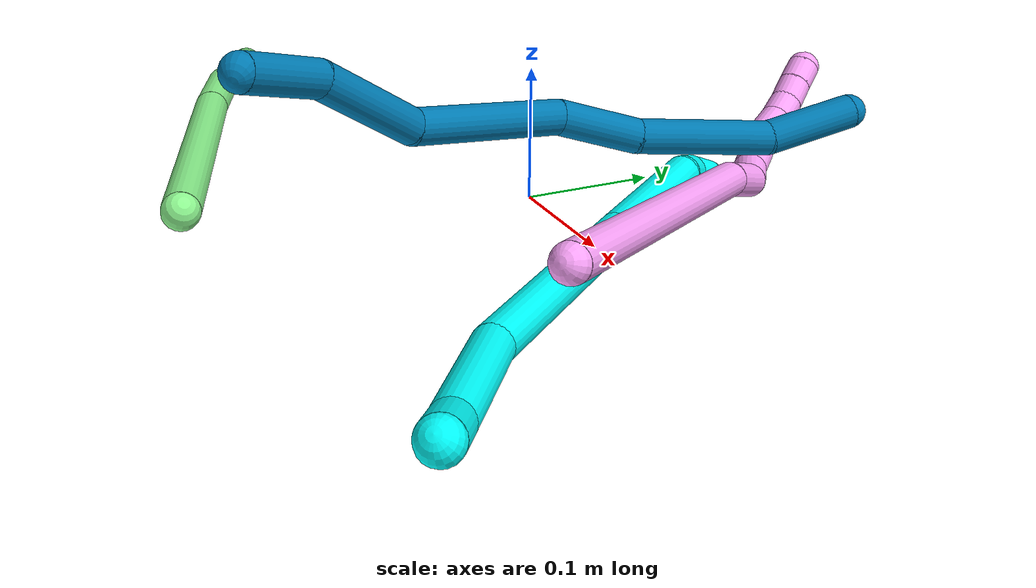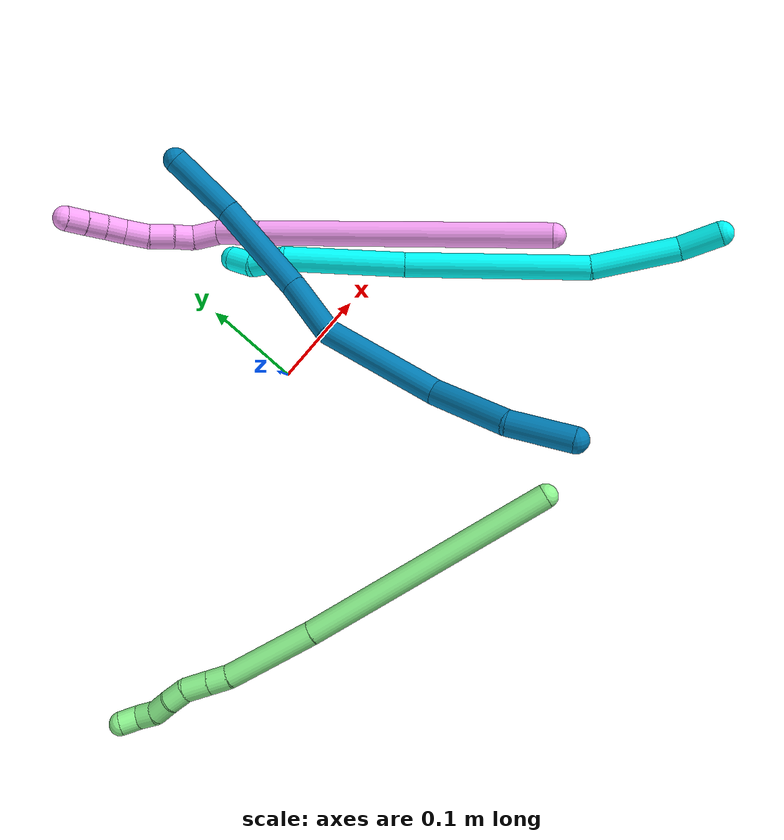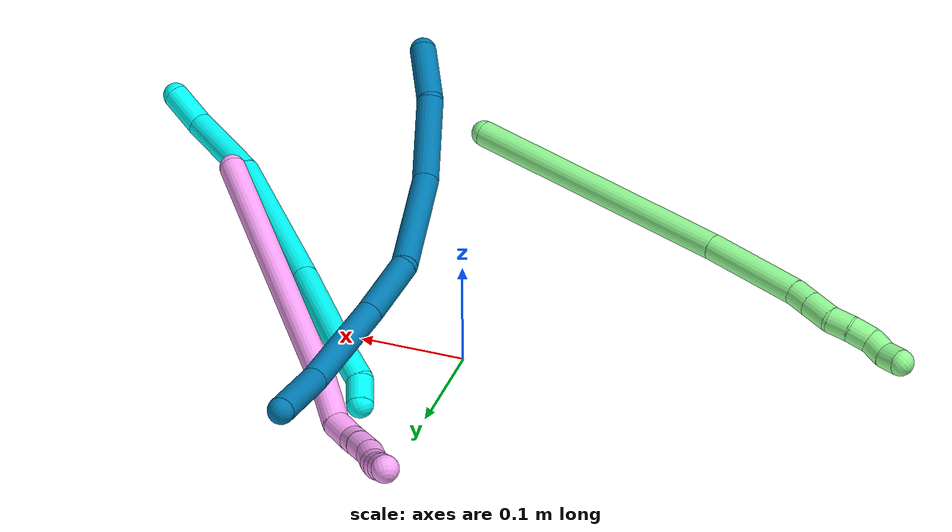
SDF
<sdf version="1.7">
 <world name="default">
  <model name="3">
   <static>0</static>
   <link name="3">
    <collision name="collision-cylinder-e_1_1_4">
     <pose>-0.002329 0.008233 -0.01924 -2.73727 -0.110824 0.528593</pose>
     <geometry><cylinder><radius>0.0125</radius><length>0.042114</length></cylinder></geometry>
     <surface>
      <friction><ode><mu>1.16</mu><mu2>1.16</mu2><slip1>0</slip1><slip2>0</slip2></ode></friction>
      <contact><ode><kp>1e+06</kp><kd>1</kd><max_vel>0</max_vel><min_depth>0.001</min_depth></ode></contact>
     </surface>
    </collision>
    <visual name="visual-cylinder-e_1_1_4">
     <pose>-0.002329 0.008233 -0.01924 -2.73727 -0.110824 0.528593</pose>
     <geometry><cylinder><radius>0.0125</radius><length>0.042114</length></cylinder></geometry>
     <material><ambient>0.003922 1 0.996078 1</ambient></material>
    </visual>
    <collision name="collision-cylinder-e_2_4_5">
     <pose>-0.003233 0.044675 -0.073181 -2.45901 0.031835 -0.089576</pose>
     <geometry><cylinder><radius>0.0125</radius><length>0.089485</length></cylinder></geometry>
     <surface>
      <friction><ode><mu>1.16</mu><mu2>1.16</mu2><slip1>0</slip1><slip2>0</slip2></ode></friction>
      <contact><ode><kp>1e+06</kp><kd>1</kd><max_vel>0</max_vel><min_depth>0.001</min_depth></ode></contact>
     </surface>
    </collision>
    <visual name="visual-cylinder-e_2_4_5">
     <pose>-0.003233 0.044675 -0.073181 -2.45901 0.031835 -0.089576</pose>
     <geometry><cylinder><radius>0.0125</radius><length>0.089485</length></cylinder></geometry>
     <material><ambient>0.003922 1 0.996078 1</ambient></material>
    </visual>
    <collision name="collision-cylinder-e_3_5_6">
     <pose>0.021818 0.129888 -0.177047 -2.4523 0.257748 -0.692896</pose>
     <geometry><cylinder><radius>0.0125</radius><length>0.185381</length></cylinder></geometry>
     <surface>
      <friction><ode><mu>1.16</mu><mu2>1.16</mu2><slip1>0</slip1><slip2>0</slip2></ode></friction>
      <contact><ode><kp>1e+06</kp><kd>1</kd><max_vel>0</max_vel><min_depth>0.001</min_depth></ode></contact>
     </surface>
    </collision>
    <visual name="visual-cylinder-e_3_5_6">
     <pose>0.021818 0.129888 -0.177047 -2.4523 0.257748 -0.692896</pose>
     <geometry><cylinder><radius>0.0125</radius><length>0.185381</length></cylinder></geometry>
     <material><ambient>0.003922 1 0.996078 1</ambient></material>
    </visual>
    <collision name="collision-cylinder-e_4_6_7">
     <pose>0.062812 0.22493 -0.29041 -2.43093 0.289455 -0.748498</pose>
     <geometry><cylinder><radius>0.0125</radius><length>0.121686</length></cylinder></geometry>
     <surface>
      <friction><ode><mu>1.16</mu><mu2>1.16</mu2><slip1>0</slip1><slip2>0</slip2></ode></friction>
      <contact><ode><kp>1e+06</kp><kd>1</kd><max_vel>0</max_vel><min_depth>0.001</min_depth></ode></contact>
     </surface>
    </collision>
    <visual name="visual-cylinder-e_4_6_7">
     <pose>0.062812 0.22493 -0.29041 -2.43093 0.289455 -0.748498</pose>
     <geometry><cylinder><radius>0.0125</radius><length>0.121686</length></cylinder></geometry>
     <material><ambient>0.003922 1 0.996078 1</ambient></material>
    </visual>
    <collision name="collision-cylinder-e_5_7_8">
     <pose>0.081482 0.270249 -0.350954 -2.72263 0.072731 -0.338972</pose>
     <geometry><cylinder><radius>0.0125</radius><length>0.035887</length></cylinder></geometry>
     <surface>
      <friction><ode><mu>1.16</mu><mu2>1.16</mu2><slip1>0</slip1><slip2>0</slip2></ode></friction>
      <contact><ode><kp>1e+06</kp><kd>1</kd><max_vel>0</max_vel><min_depth>0.001</min_depth></ode></contact>
     </surface>
    </collision>
    <visual name="visual-cylinder-e_5_7_8">
     <pose>0.081482 0.270249 -0.350954 -2.72263 0.072731 -0.338972</pose>
     <geometry><cylinder><radius>0.0125</radius><length>0.035887</length></cylinder></geometry>
     <material><ambient>0.003922 1 0.996078 1</ambient></material>
    </visual>
    <collision name="collision-cylinder-e_6_8_2">
     <pose>0.088638 0.279946 -0.378339 -2.92603 0.477913 -2.30563</pose>
     <geometry><cylinder><radius>0.0125</radius><length>0.025447</length></cylinder></geometry>
     <surface>
      <friction><ode><mu>1.16</mu><mu2>1.16</mu2><slip1>0</slip1><slip2>0</slip2></ode></friction>
      <contact><ode><kp>1e+06</kp><kd>1</kd><max_vel>0</max_vel><min_depth>0.001</min_depth></ode></contact>
     </surface>
    </collision>
    <visual name="visual-cylinder-e_6_8_2">
     <pose>0.088638 0.279946 -0.378339 -2.92603 0.477913 -2.30563</pose>
     <geometry><cylinder><radius>0.0125</radius><length>0.025447</length></cylinder></geometry>
     <material><ambient>0.003922 1 0.996078 1</ambient></material>
    </visual>
    <collision name="collision-sphere-2">
     <pose>0.094489 0.282363 -0.389375 0 -0 0</pose>
     <geometry><sphere><radius>0.0125</radius></sphere></geometry>
     <surface>
      <friction><ode><mu>1.16</mu><mu2>1.16</mu2><slip1>0</slip1><slip2>0</slip2></ode></friction>
      <contact><ode><kp>1e+06</kp><kd>1</kd><max_vel>0</max_vel><min_depth>0.001</min_depth></ode></contact>
     </surface>
    </collision>
    <visual name="visual-sphere-2">
     <pose>0.094489 0.282363 -0.389375 0 -0 0</pose>
     <geometry><sphere><radius>0.0125</radius></sphere></geometry>
     <material><ambient>0.003922 1 0.996078 1</ambient></material>
    </visual>
    <collision name="collision-sphere-4">
     <pose>-0.004658 0.016466 -0.03848 0 -0 0</pose>
     <geometry><sphere><radius>0.0125</radius></sphere></geometry>
     <surface>
      <friction><ode><mu>1.16</mu><mu2>1.16</mu2><slip1>0</slip1><slip2>0</slip2></ode></friction>
      <contact><ode><kp>1e+06</kp><kd>1</kd><max_vel>0</max_vel><min_depth>0.001</min_depth></ode></contact>
     </surface>
    </collision>
    <visual name="visual-sphere-4">
     <pose>-0.004658 0.016466 -0.03848 0 -0 0</pose>
     <geometry><sphere><radius>0.0125</radius></sphere></geometry>
     <material><ambient>0.003922 1 0.996078 1</ambient></material>
    </visual>
    <collision name="collision-sphere-1">
     <geometry><sphere><radius>0.0125</radius></sphere></geometry>
     <surface>
      <friction><ode><mu>1.16</mu><mu2>1.16</mu2><slip1>0</slip1><slip2>0</slip2></ode></friction>
      <contact><ode><kp>1e+06</kp><kd>1</kd><max_vel>0</max_vel><min_depth>0.001</min_depth></ode></contact>
     </surface>
    </collision>
    <visual name="visual-sphere-1">
     <geometry><sphere><radius>0.0125</radius></sphere></geometry>
     <material><ambient>0.003922 1 0.996078 1</ambient></material>
    </visual>
    <collision name="collision-sphere-8">
     <pose>0.082786 0.27753 -0.367302 0 -0 0</pose>
     <geometry><sphere><radius>0.0125</radius></sphere></geometry>
     <surface>
      <friction><ode><mu>1.16</mu><mu2>1.16</mu2><slip1>0</slip1><slip2>0</slip2></ode></friction>
      <contact><ode><kp>1e+06</kp><kd>1</kd><max_vel>0</max_vel><min_depth>0.001</min_depth></ode></contact>
     </surface>
    </collision>
    <visual name="visual-sphere-8">
     <pose>0.082786 0.27753 -0.367302 0 -0 0</pose>
     <geometry><sphere><radius>0.0125</radius></sphere></geometry>
     <material><ambient>0.003922 1 0.996078 1</ambient></material>
    </visual>
    <collision name="collision-sphere-5">
     <pose>-0.001809 0.072885 -0.107881 0 -0 0</pose>
     <geometry><sphere><radius>0.0125</radius></sphere></geometry>
     <surface>
      <friction><ode><mu>1.16</mu><mu2>1.16</mu2><slip1>0</slip1><slip2>0</slip2></ode></friction>
      <contact><ode><kp>1e+06</kp><kd>1</kd><max_vel>0</max_vel><min_depth>0.001</min_depth></ode></contact>
     </surface>
    </collision>
    <visual name="visual-sphere-5">
     <pose>-0.001809 0.072885 -0.107881 0 -0 0</pose>
     <geometry><sphere><radius>0.0125</radius></sphere></geometry>
     <material><ambient>0.003922 1 0.996078 1</ambient></material>
    </visual>
    <collision name="collision-sphere-6">
     <pose>0.045445 0.186891 -0.246213 0 -0 0</pose>
     <geometry><sphere><radius>0.0125</radius></sphere></geometry>
     <surface>
      <friction><ode><mu>1.16</mu><mu2>1.16</mu2><slip1>0</slip1><slip2>0</slip2></ode></friction>
      <contact><ode><kp>1e+06</kp><kd>1</kd><max_vel>0</max_vel><min_depth>0.001</min_depth></ode></contact>
     </surface>
    </collision>
    <visual name="visual-sphere-6">
     <pose>0.045445 0.186891 -0.246213 0 -0 0</pose>
     <geometry><sphere><radius>0.0125</radius></sphere></geometry>
     <material><ambient>0.003922 1 0.996078 1</ambient></material>
    </visual>
    <collision name="collision-sphere-7">
     <pose>0.080178 0.262969 -0.334606 0 -0 0</pose>
     <geometry><sphere><radius>0.0125</radius></sphere></geometry>
     <surface>
      <friction><ode><mu>1.16</mu><mu2>1.16</mu2><slip1>0</slip1><slip2>0</slip2></ode></friction>
      <contact><ode><kp>1e+06</kp><kd>1</kd><max_vel>0</max_vel><min_depth>0.001</min_depth></ode></contact>
     </surface>
    </collision>
    <visual name="visual-sphere-7">
     <pose>0.080178 0.262969 -0.334606 0 -0 0</pose>
     <geometry><sphere><radius>0.0125</radius></sphere></geometry>
     <material><ambient>0.003922 1 0.996078 1</ambient></material>
    </visual>
    <inertial>
     <pose>0.03296 0.145232 -0.195482 0 -0 0</pose>
     <mass>0.5</mass>
     <inertia>
      <ixx>0.000151</ixx>
      <ixy>0</ixy>
      <ixz>0</ixz>
      <iyy>-0.000804</iyy>
      <iyz>0</iyz>
      <izz>-0.000688</izz>
     </inertia>
    </inertial>
   </link>
   <pose>0.385968 -0.237553 0.070669 0.810497 -0.098687 0.955283</pose>
  </model>
  <model name="4">
   <static>0</static>
   <link name="4">
    <collision name="collision-cylinder-e_1_1_4">
     <pose>-0.033258 0.004374 -0.143745 -3.11117 -0.227268 2.87656</pose>
     <geometry><cylinder><radius>0.0125</radius><length>0.295214</length></cylinder></geometry>
     <surface>
      <friction><ode><mu>1.16</mu><mu2>1.16</mu2><slip1>0</slip1><slip2>0</slip2></ode></friction>
      <contact><ode><kp>1e+06</kp><kd>1</kd><max_vel>0</max_vel><min_depth>0.001</min_depth></ode></contact>
     </surface>
    </collision>
    <visual name="visual-cylinder-e_1_1_4">
     <pose>-0.033258 0.004374 -0.143745 -3.11117 -0.227268 2.87656</pose>
     <geometry><cylinder><radius>0.0125</radius><length>0.295214</length></cylinder></geometry>
     <material><ambient>1 0.65098 0.996078 1</ambient></material>
    </visual>
    <collision name="collision-cylinder-e_2_4_5">
     <pose>-0.068365 0.007837 -0.311405 3.10347 -0.077063 -2.22316</pose>
     <geometry><cylinder><radius>0.0125</radius><length>0.048007</length></cylinder></geometry>
     <surface>
      <friction><ode><mu>1.16</mu><mu2>1.16</mu2><slip1>0</slip1><slip2>0</slip2></ode></friction>
      <contact><ode><kp>1e+06</kp><kd>1</kd><max_vel>0</max_vel><min_depth>0.001</min_depth></ode></contact>
     </surface>
    </collision>
    <visual name="visual-cylinder-e_2_4_5">
     <pose>-0.068365 0.007837 -0.311405 3.10347 -0.077063 -2.22316</pose>
     <geometry><cylinder><radius>0.0125</radius><length>0.048007</length></cylinder></geometry>
     <material><ambient>1 0.65098 0.996078 1</ambient></material>
    </visual>
    <collision name="collision-cylinder-e_3_5_6">
     <pose>-0.076921 0.005743 -0.347333 3.04356 -0.507234 -2.76749</pose>
     <geometry><cylinder><radius>0.0125</radius><length>0.027619</length></cylinder></geometry>
     <surface>
      <friction><ode><mu>1.16</mu><mu2>1.16</mu2><slip1>0</slip1><slip2>0</slip2></ode></friction>
      <contact><ode><kp>1e+06</kp><kd>1</kd><max_vel>0</max_vel><min_depth>0.001</min_depth></ode></contact>
     </surface>
    </collision>
    <visual name="visual-cylinder-e_3_5_6">
     <pose>-0.076921 0.005743 -0.347333 3.04356 -0.507234 -2.76749</pose>
     <geometry><cylinder><radius>0.0125</radius><length>0.027619</length></cylinder></geometry>
     <material><ambient>1 0.65098 0.996078 1</ambient></material>
    </visual>
    <collision name="collision-cylinder-e_4_6_7">
     <pose>-0.08979 0.007783 -0.366817 -2.73456 -0.648104 2.03971</pose>
     <geometry><cylinder><radius>0.0125</radius><length>0.020411</length></cylinder></geometry>
     <surface>
      <friction><ode><mu>1.16</mu><mu2>1.16</mu2><slip1>0</slip1><slip2>0</slip2></ode></friction>
      <contact><ode><kp>1e+06</kp><kd>1</kd><max_vel>0</max_vel><min_depth>0.001</min_depth></ode></contact>
     </surface>
    </collision>
    <visual name="visual-cylinder-e_4_6_7">
     <pose>-0.08979 0.007783 -0.366817 -2.73456 -0.648104 2.03971</pose>
     <geometry><cylinder><radius>0.0125</radius><length>0.020411</length></cylinder></geometry>
     <material><ambient>1 0.65098 0.996078 1</ambient></material>
    </visual>
    <collision name="collision-cylinder-e_5_7_8">
     <pose>-0.103178 0.013756 -0.383955 -2.86424 -0.623453 2.3241</pose>
     <geometry><cylinder><radius>0.0125</radius><length>0.024759</length></cylinder></geometry>
     <surface>
      <friction><ode><mu>1.16</mu><mu2>1.16</mu2><slip1>0</slip1><slip2>0</slip2></ode></friction>
      <contact><ode><kp>1e+06</kp><kd>1</kd><max_vel>0</max_vel><min_depth>0.001</min_depth></ode></contact>
     </surface>
    </collision>
    <visual name="visual-cylinder-e_5_7_8">
     <pose>-0.103178 0.013756 -0.383955 -2.86424 -0.623453 2.3241</pose>
     <geometry><cylinder><radius>0.0125</radius><length>0.024759</length></cylinder></geometry>
     <material><ambient>1 0.65098 0.996078 1</ambient></material>
    </visual>
    <collision name="collision-cylinder-e_6_8_9">
     <pose>-0.115894 0.021074 -0.40326 -2.69915 -0.475253 1.64484</pose>
     <geometry><cylinder><radius>0.0125</radius><length>0.023989</length></cylinder></geometry>
     <surface>
      <friction><ode><mu>1.16</mu><mu2>1.16</mu2><slip1>0</slip1><slip2>0</slip2></ode></friction>
      <contact><ode><kp>1e+06</kp><kd>1</kd><max_vel>0</max_vel><min_depth>0.001</min_depth></ode></contact>
     </surface>
    </collision>
    <visual name="visual-cylinder-e_6_8_9">
     <pose>-0.115894 0.021074 -0.40326 -2.69915 -0.475253 1.64484</pose>
     <geometry><cylinder><radius>0.0125</radius><length>0.023989</length></cylinder></geometry>
     <material><ambient>1 0.65098 0.996078 1</ambient></material>
    </visual>
    <collision name="collision-cylinder-e_7_9_10">
     <pose>-0.127054 0.030486 -0.419558 -2.51264 -0.602987 1.52587</pose>
     <geometry><cylinder><radius>0.0125</radius><length>0.02</length></cylinder></geometry>
     <surface>
      <friction><ode><mu>1.16</mu><mu2>1.16</mu2><slip1>0</slip1><slip2>0</slip2></ode></friction>
      <contact><ode><kp>1e+06</kp><kd>1</kd><max_vel>0</max_vel><min_depth>0.001</min_depth></ode></contact>
     </surface>
    </collision>
    <visual name="visual-cylinder-e_7_9_10">
     <pose>-0.127054 0.030486 -0.419558 -2.51264 -0.602987 1.52587</pose>
     <geometry><cylinder><radius>0.0125</radius><length>0.02</length></cylinder></geometry>
     <material><ambient>1 0.65098 0.996078 1</ambient></material>
    </visual>
    <collision name="collision-cylinder-e_8_10_11">
     <pose>-0.139139 0.040319 -0.432048 -2.43377 -0.69636 1.55304</pose>
     <geometry><cylinder><radius>0.0125</radius><length>0.02</length></cylinder></geometry>
     <surface>
      <friction><ode><mu>1.16</mu><mu2>1.16</mu2><slip1>0</slip1><slip2>0</slip2></ode></friction>
      <contact><ode><kp>1e+06</kp><kd>1</kd><max_vel>0</max_vel><min_depth>0.001</min_depth></ode></contact>
     </surface>
    </collision>
    <visual name="visual-cylinder-e_8_10_11">
     <pose>-0.139139 0.040319 -0.432048 -2.43377 -0.69636 1.55304</pose>
     <geometry><cylinder><radius>0.0125</radius><length>0.02</length></cylinder></geometry>
     <material><ambient>1 0.65098 0.996078 1</ambient></material>
    </visual>
    <collision name="collision-cylinder-e_9_11_2">
     <pose>-0.151739 0.050331 -0.443918 -2.44792 -0.66689 1.52822</pose>
     <geometry><cylinder><radius>0.0125</radius><length>0.02</length></cylinder></geometry>
     <surface>
      <friction><ode><mu>1.16</mu><mu2>1.16</mu2><slip1>0</slip1><slip2>0</slip2></ode></friction>
      <contact><ode><kp>1e+06</kp><kd>1</kd><max_vel>0</max_vel><min_depth>0.001</min_depth></ode></contact>
     </surface>
    </collision>
    <visual name="visual-cylinder-e_9_11_2">
     <pose>-0.151739 0.050331 -0.443918 -2.44792 -0.66689 1.52822</pose>
     <geometry><cylinder><radius>0.0125</radius><length>0.02</length></cylinder></geometry>
     <material><ambient>1 0.65098 0.996078 1</ambient></material>
    </visual>
    <collision name="collision-sphere-2">
     <pose>-0.157924 0.055355 -0.44996 0 -0 0</pose>
     <geometry><sphere><radius>0.0125</radius></sphere></geometry>
     <surface>
      <friction><ode><mu>1.16</mu><mu2>1.16</mu2><slip1>0</slip1><slip2>0</slip2></ode></friction>
      <contact><ode><kp>1e+06</kp><kd>1</kd><max_vel>0</max_vel><min_depth>0.001</min_depth></ode></contact>
     </surface>
    </collision>
    <visual name="visual-sphere-2">
     <pose>-0.157924 0.055355 -0.44996 0 -0 0</pose>
     <geometry><sphere><radius>0.0125</radius></sphere></geometry>
     <material><ambient>1 0.65098 0.996078 1</ambient></material>
    </visual>
    <collision name="collision-sphere-11">
     <pose>-0.145553 0.045307 -0.437877 0 -0 0</pose>
     <geometry><sphere><radius>0.0125</radius></sphere></geometry>
     <surface>
      <friction><ode><mu>1.16</mu><mu2>1.16</mu2><slip1>0</slip1><slip2>0</slip2></ode></friction>
      <contact><ode><kp>1e+06</kp><kd>1</kd><max_vel>0</max_vel><min_depth>0.001</min_depth></ode></contact>
     </surface>
    </collision>
    <visual name="visual-sphere-11">
     <pose>-0.145553 0.045307 -0.437877 0 -0 0</pose>
     <geometry><sphere><radius>0.0125</radius></sphere></geometry>
     <material><ambient>1 0.65098 0.996078 1</ambient></material>
    </visual>
    <collision name="collision-sphere-10">
     <pose>-0.132725 0.035331 -0.426219 0 -0 0</pose>
     <geometry><sphere><radius>0.0125</radius></sphere></geometry>
     <surface>
      <friction><ode><mu>1.16</mu><mu2>1.16</mu2><slip1>0</slip1><slip2>0</slip2></ode></friction>
      <contact><ode><kp>1e+06</kp><kd>1</kd><max_vel>0</max_vel><min_depth>0.001</min_depth></ode></contact>
     </surface>
    </collision>
    <visual name="visual-sphere-10">
     <pose>-0.132725 0.035331 -0.426219 0 -0 0</pose>
     <geometry><sphere><radius>0.0125</radius></sphere></geometry>
     <material><ambient>1 0.65098 0.996078 1</ambient></material>
    </visual>
    <collision name="collision-sphere-9">
     <pose>-0.121382 0.02564 -0.412898 0 -0 0</pose>
     <geometry><sphere><radius>0.0125</radius></sphere></geometry>
     <surface>
      <friction><ode><mu>1.16</mu><mu2>1.16</mu2><slip1>0</slip1><slip2>0</slip2></ode></friction>
      <contact><ode><kp>1e+06</kp><kd>1</kd><max_vel>0</max_vel><min_depth>0.001</min_depth></ode></contact>
     </surface>
    </collision>
    <visual name="visual-sphere-9">
     <pose>-0.121382 0.02564 -0.412898 0 -0 0</pose>
     <geometry><sphere><radius>0.0125</radius></sphere></geometry>
     <material><ambient>1 0.65098 0.996078 1</ambient></material>
    </visual>
    <collision name="collision-sphere-4">
     <pose>-0.066517 0.008749 -0.28749 0 -0 0</pose>
     <geometry><sphere><radius>0.0125</radius></sphere></geometry>
     <surface>
      <friction><ode><mu>1.16</mu><mu2>1.16</mu2><slip1>0</slip1><slip2>0</slip2></ode></friction>
      <contact><ode><kp>1e+06</kp><kd>1</kd><max_vel>0</max_vel><min_depth>0.001</min_depth></ode></contact>
     </surface>
    </collision>
    <visual name="visual-sphere-4">
     <pose>-0.066517 0.008749 -0.28749 0 -0 0</pose>
     <geometry><sphere><radius>0.0125</radius></sphere></geometry>
     <material><ambient>1 0.65098 0.996078 1</ambient></material>
    </visual>
    <collision name="collision-sphere-1">
     <geometry><sphere><radius>0.0125</radius></sphere></geometry>
     <surface>
      <friction><ode><mu>1.16</mu><mu2>1.16</mu2><slip1>0</slip1><slip2>0</slip2></ode></friction>
      <contact><ode><kp>1e+06</kp><kd>1</kd><max_vel>0</max_vel><min_depth>0.001</min_depth></ode></contact>
     </surface>
    </collision>
    <visual name="visual-sphere-1">
     <geometry><sphere><radius>0.0125</radius></sphere></geometry>
     <material><ambient>1 0.65098 0.996078 1</ambient></material>
    </visual>
    <collision name="collision-sphere-8">
     <pose>-0.110406 0.016508 -0.393622 0 -0 0</pose>
     <geometry><sphere><radius>0.0125</radius></sphere></geometry>
     <surface>
      <friction><ode><mu>1.16</mu><mu2>1.16</mu2><slip1>0</slip1><slip2>0</slip2></ode></friction>
      <contact><ode><kp>1e+06</kp><kd>1</kd><max_vel>0</max_vel><min_depth>0.001</min_depth></ode></contact>
     </surface>
    </collision>
    <visual name="visual-sphere-8">
     <pose>-0.110406 0.016508 -0.393622 0 -0 0</pose>
     <geometry><sphere><radius>0.0125</radius></sphere></geometry>
     <material><ambient>1 0.65098 0.996078 1</ambient></material>
    </visual>
    <collision name="collision-sphere-5">
     <pose>-0.070213 0.006925 -0.33532 0 -0 0</pose>
     <geometry><sphere><radius>0.0125</radius></sphere></geometry>
     <surface>
      <friction><ode><mu>1.16</mu><mu2>1.16</mu2><slip1>0</slip1><slip2>0</slip2></ode></friction>
      <contact><ode><kp>1e+06</kp><kd>1</kd><max_vel>0</max_vel><min_depth>0.001</min_depth></ode></contact>
     </surface>
    </collision>
    <visual name="visual-sphere-5">
     <pose>-0.070213 0.006925 -0.33532 0 -0 0</pose>
     <geometry><sphere><radius>0.0125</radius></sphere></geometry>
     <material><ambient>1 0.65098 0.996078 1</ambient></material>
    </visual>
    <collision name="collision-sphere-6">
     <pose>-0.083629 0.004562 -0.359346 0 -0 0</pose>
     <geometry><sphere><radius>0.0125</radius></sphere></geometry>
     <surface>
      <friction><ode><mu>1.16</mu><mu2>1.16</mu2><slip1>0</slip1><slip2>0</slip2></ode></friction>
      <contact><ode><kp>1e+06</kp><kd>1</kd><max_vel>0</max_vel><min_depth>0.001</min_depth></ode></contact>
     </surface>
    </collision>
    <visual name="visual-sphere-6">
     <pose>-0.083629 0.004562 -0.359346 0 -0 0</pose>
     <geometry><sphere><radius>0.0125</radius></sphere></geometry>
     <material><ambient>1 0.65098 0.996078 1</ambient></material>
    </visual>
    <collision name="collision-sphere-7">
     <pose>-0.095951 0.011004 -0.374289 0 -0 0</pose>
     <geometry><sphere><radius>0.0125</radius></sphere></geometry>
     <surface>
      <friction><ode><mu>1.16</mu><mu2>1.16</mu2><slip1>0</slip1><slip2>0</slip2></ode></friction>
      <contact><ode><kp>1e+06</kp><kd>1</kd><max_vel>0</max_vel><min_depth>0.001</min_depth></ode></contact>
     </surface>
    </collision>
    <visual name="visual-sphere-7">
     <pose>-0.095951 0.011004 -0.374289 0 -0 0</pose>
     <geometry><sphere><radius>0.0125</radius></sphere></geometry>
     <material><ambient>1 0.65098 0.996078 1</ambient></material>
    </visual>
    <inertial>
     <pose>-0.061502 0.010508 -0.239112 0 -0 0</pose>
     <mass>0.5</mass>
     <inertia>
      <ixx>-0.001502</ixx>
      <ixy>0</ixy>
      <ixz>0</ixz>
      <iyy>0.00265</iyy>
      <iyz>0</iyz>
      <izz>0.000391</izz>
     </inertia>
    </inertial>
   </link>
   <pose>0.273645 -0.114159 0.083334 1.01298 0.794471 0.129881</pose>
  </model>
  <model name="9">
   <static>0</static>
   <link name="9">
    <collision name="collision-cylinder-e_1_1_4">
     <pose>0.006695 0.019321 -0.02446 -2.47305 0.211585 -0.593452</pose>
     <geometry><cylinder><radius>0.0125</radius><length>0.063763</length></cylinder></geometry>
     <surface>
      <friction><ode><mu>1.16</mu><mu2>1.16</mu2><slip1>0</slip1><slip2>0</slip2></ode></friction>
      <contact><ode><kp>1e+06</kp><kd>1</kd><max_vel>0</max_vel><min_depth>0.001</min_depth></ode></contact>
     </surface>
    </collision>
    <visual name="visual-cylinder-e_1_1_4">
     <pose>0.006695 0.019321 -0.02446 -2.47305 0.211585 -0.593452</pose>
     <geometry><cylinder><radius>0.0125</radius><length>0.063763</length></cylinder></geometry>
     <material><ambient>0 0.490196 0.709804 1</ambient></material>
    </visual>
    <collision name="collision-cylinder-e_2_4_5">
     <pose>0.028483 0.07092 -0.070933 -2.16932 0.36864 -0.678347</pose>
     <geometry><cylinder><radius>0.0125</radius><length>0.083767</length></cylinder></geometry>
     <surface>
      <friction><ode><mu>1.16</mu><mu2>1.16</mu2><slip1>0</slip1><slip2>0</slip2></ode></friction>
      <contact><ode><kp>1e+06</kp><kd>1</kd><max_vel>0</max_vel><min_depth>0.001</min_depth></ode></contact>
     </surface>
    </collision>
    <visual name="visual-cylinder-e_2_4_5">
     <pose>0.028483 0.07092 -0.070933 -2.16932 0.36864 -0.678347</pose>
     <geometry><cylinder><radius>0.0125</radius><length>0.083767</length></cylinder></geometry>
     <material><ambient>0 0.490196 0.709804 1</ambient></material>
    </visual>
    <collision name="collision-cylinder-e_3_5_6">
     <pose>0.040194 0.146835 -0.134088 -2.32678 -0.056333 0.130386</pose>
     <geometry><cylinder><radius>0.0125</radius><length>0.120138</length></cylinder></geometry>
     <surface>
      <friction><ode><mu>1.16</mu><mu2>1.16</mu2><slip1>0</slip1><slip2>0</slip2></ode></friction>
      <contact><ode><kp>1e+06</kp><kd>1</kd><max_vel>0</max_vel><min_depth>0.001</min_depth></ode></contact>
     </surface>
    </collision>
    <visual name="visual-cylinder-e_3_5_6">
     <pose>0.040194 0.146835 -0.134088 -2.32678 -0.056333 0.130386</pose>
     <geometry><cylinder><radius>0.0125</radius><length>0.120138</length></cylinder></geometry>
     <material><ambient>0 0.490196 0.709804 1</ambient></material>
    </visual>
    <collision name="collision-cylinder-e_4_6_7">
     <pose>0.034189 0.2192 -0.18492 -1.8961 -0.086298 0.120112</pose>
     <geometry><cylinder><radius>0.0125</radius><length>0.060864</length></cylinder></geometry>
     <surface>
      <friction><ode><mu>1.16</mu><mu2>1.16</mu2><slip1>0</slip1><slip2>0</slip2></ode></friction>
      <contact><ode><kp>1e+06</kp><kd>1</kd><max_vel>0</max_vel><min_depth>0.001</min_depth></ode></contact>
     </surface>
    </collision>
    <visual name="visual-cylinder-e_4_6_7">
     <pose>0.034189 0.2192 -0.18492 -1.8961 -0.086298 0.120112</pose>
     <geometry><cylinder><radius>0.0125</radius><length>0.060864</length></cylinder></geometry>
     <material><ambient>0 0.490196 0.709804 1</ambient></material>
    </visual>
    <collision name="collision-cylinder-e_5_7_8">
     <pose>0.019655 0.292125 -0.217124 -2.04193 -0.235676 0.381634</pose>
     <geometry><cylinder><radius>0.0125</radius><length>0.10202</length></cylinder></geometry>
     <surface>
      <friction><ode><mu>1.16</mu><mu2>1.16</mu2><slip1>0</slip1><slip2>0</slip2></ode></friction>
      <contact><ode><kp>1e+06</kp><kd>1</kd><max_vel>0</max_vel><min_depth>0.001</min_depth></ode></contact>
     </surface>
    </collision>
    <visual name="visual-cylinder-e_5_7_8">
     <pose>0.019655 0.292125 -0.217124 -2.04193 -0.235676 0.381634</pose>
     <geometry><cylinder><radius>0.0125</radius><length>0.10202</length></cylinder></geometry>
     <material><ambient>0 0.490196 0.709804 1</ambient></material>
    </visual>
    <collision name="collision-cylinder-e_6_8_2">
     <pose>-0.00716 0.360388 -0.259747 -2.26685 -0.443623 0.898814</pose>
     <geometry><cylinder><radius>0.0125</radius><length>0.069448</length></cylinder></geometry>
     <surface>
      <friction><ode><mu>1.16</mu><mu2>1.16</mu2><slip1>0</slip1><slip2>0</slip2></ode></friction>
      <contact><ode><kp>1e+06</kp><kd>1</kd><max_vel>0</max_vel><min_depth>0.001</min_depth></ode></contact>
     </surface>
    </collision>
    <visual name="visual-cylinder-e_6_8_2">
     <pose>-0.00716 0.360388 -0.259747 -2.26685 -0.443623 0.898814</pose>
     <geometry><cylinder><radius>0.0125</radius><length>0.069448</length></cylinder></geometry>
     <material><ambient>0 0.490196 0.709804 1</ambient></material>
    </visual>
    <collision name="collision-sphere-2">
     <pose>-0.022064 0.384455 -0.279856 0 -0 0</pose>
     <geometry><sphere><radius>0.0125</radius></sphere></geometry>
     <surface>
      <friction><ode><mu>1.16</mu><mu2>1.16</mu2><slip1>0</slip1><slip2>0</slip2></ode></friction>
      <contact><ode><kp>1e+06</kp><kd>1</kd><max_vel>0</max_vel><min_depth>0.001</min_depth></ode></contact>
     </surface>
    </collision>
    <visual name="visual-sphere-2">
     <pose>-0.022064 0.384455 -0.279856 0 -0 0</pose>
     <geometry><sphere><radius>0.0125</radius></sphere></geometry>
     <material><ambient>0 0.490196 0.709804 1</ambient></material>
    </visual>
    <collision name="collision-sphere-4">
     <pose>0.013391 0.038642 -0.048921 0 -0 0</pose>
     <geometry><sphere><radius>0.0125</radius></sphere></geometry>
     <surface>
      <friction><ode><mu>1.16</mu><mu2>1.16</mu2><slip1>0</slip1><slip2>0</slip2></ode></friction>
      <contact><ode><kp>1e+06</kp><kd>1</kd><max_vel>0</max_vel><min_depth>0.001</min_depth></ode></contact>
     </surface>
    </collision>
    <visual name="visual-sphere-4">
     <pose>0.013391 0.038642 -0.048921 0 -0 0</pose>
     <geometry><sphere><radius>0.0125</radius></sphere></geometry>
     <material><ambient>0 0.490196 0.709804 1</ambient></material>
    </visual>
    <collision name="collision-sphere-1">
     <geometry><sphere><radius>0.0125</radius></sphere></geometry>
     <surface>
      <friction><ode><mu>1.16</mu><mu2>1.16</mu2><slip1>0</slip1><slip2>0</slip2></ode></friction>
      <contact><ode><kp>1e+06</kp><kd>1</kd><max_vel>0</max_vel><min_depth>0.001</min_depth></ode></contact>
     </surface>
    </collision>
    <visual name="visual-sphere-1">
     <geometry><sphere><radius>0.0125</radius></sphere></geometry>
     <material><ambient>0 0.490196 0.709804 1</ambient></material>
    </visual>
    <collision name="collision-sphere-8">
     <pose>0.007744 0.336321 -0.239637 0 -0 0</pose>
     <geometry><sphere><radius>0.0125</radius></sphere></geometry>
     <surface>
      <friction><ode><mu>1.16</mu><mu2>1.16</mu2><slip1>0</slip1><slip2>0</slip2></ode></friction>
      <contact><ode><kp>1e+06</kp><kd>1</kd><max_vel>0</max_vel><min_depth>0.001</min_depth></ode></contact>
     </surface>
    </collision>
    <visual name="visual-sphere-8">
     <pose>0.007744 0.336321 -0.239637 0 -0 0</pose>
     <geometry><sphere><radius>0.0125</radius></sphere></geometry>
     <material><ambient>0 0.490196 0.709804 1</ambient></material>
    </visual>
    <collision name="collision-sphere-5">
     <pose>0.043576 0.103198 -0.092946 0 -0 0</pose>
     <geometry><sphere><radius>0.0125</radius></sphere></geometry>
     <surface>
      <friction><ode><mu>1.16</mu><mu2>1.16</mu2><slip1>0</slip1><slip2>0</slip2></ode></friction>
      <contact><ode><kp>1e+06</kp><kd>1</kd><max_vel>0</max_vel><min_depth>0.001</min_depth></ode></contact>
     </surface>
    </collision>
    <visual name="visual-sphere-5">
     <pose>0.043576 0.103198 -0.092946 0 -0 0</pose>
     <geometry><sphere><radius>0.0125</radius></sphere></geometry>
     <material><ambient>0 0.490196 0.709804 1</ambient></material>
    </visual>
    <collision name="collision-sphere-6">
     <pose>0.036812 0.190472 -0.17523 0 -0 0</pose>
     <geometry><sphere><radius>0.0125</radius></sphere></geometry>
     <surface>
      <friction><ode><mu>1.16</mu><mu2>1.16</mu2><slip1>0</slip1><slip2>0</slip2></ode></friction>
      <contact><ode><kp>1e+06</kp><kd>1</kd><max_vel>0</max_vel><min_depth>0.001</min_depth></ode></contact>
     </surface>
    </collision>
    <visual name="visual-sphere-6">
     <pose>0.036812 0.190472 -0.17523 0 -0 0</pose>
     <geometry><sphere><radius>0.0125</radius></sphere></geometry>
     <material><ambient>0 0.490196 0.709804 1</ambient></material>
    </visual>
    <collision name="collision-sphere-7">
     <pose>0.031566 0.247929 -0.19461 0 -0 0</pose>
     <geometry><sphere><radius>0.0125</radius></sphere></geometry>
     <surface>
      <friction><ode><mu>1.16</mu><mu2>1.16</mu2><slip1>0</slip1><slip2>0</slip2></ode></friction>
      <contact><ode><kp>1e+06</kp><kd>1</kd><max_vel>0</max_vel><min_depth>0.001</min_depth></ode></contact>
     </surface>
    </collision>
    <visual name="visual-sphere-7">
     <pose>0.031566 0.247929 -0.19461 0 -0 0</pose>
     <geometry><sphere><radius>0.0125</radius></sphere></geometry>
     <material><ambient>0 0.490196 0.709804 1</ambient></material>
    </visual>
    <inertial>
     <pose>0.022461 0.185971 -0.150111 0 -0 0</pose>
     <mass>0.5</mass>
     <inertia>
      <ixx>0.000358</ixx>
      <ixy>0</ixy>
      <ixz>0</ixz>
      <iyy>-0.000107</iyy>
      <iyz>0</iyz>
      <izz>-0.000285</izz>
     </inertia>
    </inertial>
   </link>
   <pose>0.13002 -0.248368 0.165324 -2.01944 1.016 -2.605</pose>
  </model>
  <model name="13">
   <static>0</static>
   <link name="13">
    <collision name="collision-cylinder-e_1_1_4">
     <pose>-0.09497 -0.004381 0.097418 0.044941 -0.772166 -0.01827</pose>
     <geometry><cylinder><radius>0.0125</radius><length>0.272241</length></cylinder></geometry>
     <surface>
      <friction><ode><mu>1.16</mu><mu2>1.16</mu2><slip1>0</slip1><slip2>0</slip2></ode></friction>
      <contact><ode><kp>1e+06</kp><kd>1</kd><max_vel>0</max_vel><min_depth>0.001</min_depth></ode></contact>
     </surface>
    </collision>
    <visual name="visual-cylinder-e_1_1_4">
     <pose>-0.09497 -0.004381 0.097418 0.044941 -0.772166 -0.01827</pose>
     <geometry><cylinder><radius>0.0125</radius><length>0.272241</length></cylinder></geometry>
     <material><ambient>0.564706 0.984314 0.572549 1</ambient></material>
    </visual>
    <collision name="collision-cylinder-e_2_4_5">
     <pose>-0.223439 -0.012227 0.229324 0.100133 -0.768363 -0.040509</pose>
     <geometry><cylinder><radius>0.0125</radius><length>0.096407</length></cylinder></geometry>
     <surface>
      <friction><ode><mu>1.16</mu><mu2>1.16</mu2><slip1>0</slip1><slip2>0</slip2></ode></friction>
      <contact><ode><kp>1e+06</kp><kd>1</kd><max_vel>0</max_vel><min_depth>0.001</min_depth></ode></contact>
     </surface>
    </collision>
    <visual name="visual-cylinder-e_2_4_5">
     <pose>-0.223439 -0.012227 0.229324 0.100133 -0.768363 -0.040509</pose>
     <geometry><cylinder><radius>0.0125</radius><length>0.096407</length></cylinder></geometry>
     <material><ambient>0.564706 0.984314 0.572549 1</ambient></material>
    </visual>
    <collision name="collision-cylinder-e_3_5_6">
     <pose>-0.26465 -0.018354 0.270995 0.35492 -0.788642 -0.148981</pose>
     <geometry><cylinder><radius>0.0125</radius><length>0.021741</length></cylinder></geometry>
     <surface>
      <friction><ode><mu>1.16</mu><mu2>1.16</mu2><slip1>0</slip1><slip2>0</slip2></ode></friction>
      <contact><ode><kp>1e+06</kp><kd>1</kd><max_vel>0</max_vel><min_depth>0.001</min_depth></ode></contact>
     </surface>
    </collision>
    <visual name="visual-cylinder-e_3_5_6">
     <pose>-0.26465 -0.018354 0.270995 0.35492 -0.788642 -0.148981</pose>
     <geometry><cylinder><radius>0.0125</radius><length>0.021741</length></cylinder></geometry>
     <material><ambient>0.564706 0.984314 0.572549 1</ambient></material>
    </visual>
    <collision name="collision-cylinder-e_4_6_7">
     <pose>-0.281892 -0.024308 0.287129 0.3524 -0.785096 -0.147169</pose>
     <geometry><cylinder><radius>0.0125</radius><length>0.026965</length></cylinder></geometry>
     <surface>
      <friction><ode><mu>1.16</mu><mu2>1.16</mu2><slip1>0</slip1><slip2>0</slip2></ode></friction>
      <contact><ode><kp>1e+06</kp><kd>1</kd><max_vel>0</max_vel><min_depth>0.001</min_depth></ode></contact>
     </surface>
    </collision>
    <visual name="visual-cylinder-e_4_6_7">
     <pose>-0.281892 -0.024308 0.287129 0.3524 -0.785096 -0.147169</pose>
     <geometry><cylinder><radius>0.0125</radius><length>0.026965</length></cylinder></geometry>
     <material><ambient>0.564706 0.984314 0.572549 1</ambient></material>
    </visual>
    <collision name="collision-cylinder-e_5_7_8">
     <pose>-0.298225 -0.027123 0.30434 -0.057683 -0.688095 0.020673</pose>
     <geometry><cylinder><radius>0.0125</radius><length>0.021423</length></cylinder></geometry>
     <surface>
      <friction><ode><mu>1.16</mu><mu2>1.16</mu2><slip1>0</slip1><slip2>0</slip2></ode></friction>
      <contact><ode><kp>1e+06</kp><kd>1</kd><max_vel>0</max_vel><min_depth>0.001</min_depth></ode></contact>
     </surface>
    </collision>
    <visual name="visual-cylinder-e_5_7_8">
     <pose>-0.298225 -0.027123 0.30434 -0.057683 -0.688095 0.020673</pose>
     <geometry><cylinder><radius>0.0125</radius><length>0.021423</length></cylinder></geometry>
     <material><ambient>0.564706 0.984314 0.572549 1</ambient></material>
    </visual>
    <collision name="collision-cylinder-e_6_8_9">
     <pose>-0.310259 -0.026186 0.321753 -0.05024 -0.518741 0.013334</pose>
     <geometry><cylinder><radius>0.0125</radius><length>0.021104</length></cylinder></geometry>
     <surface>
      <friction><ode><mu>1.16</mu><mu2>1.16</mu2><slip1>0</slip1><slip2>0</slip2></ode></friction>
      <contact><ode><kp>1e+06</kp><kd>1</kd><max_vel>0</max_vel><min_depth>0.001</min_depth></ode></contact>
     </surface>
    </collision>
    <visual name="visual-cylinder-e_6_8_9">
     <pose>-0.310259 -0.026186 0.321753 -0.05024 -0.518741 0.013334</pose>
     <geometry><cylinder><radius>0.0125</radius><length>0.021104</length></cylinder></geometry>
     <material><ambient>0.564706 0.984314 0.572549 1</ambient></material>
    </visual>
    <collision name="collision-cylinder-e_7_9_10">
     <pose>-0.321202 -0.028796 0.338573 0.380915 -0.604937 -0.120175</pose>
     <geometry><cylinder><radius>0.0125</radius><length>0.020085</length></cylinder></geometry>
     <surface>
      <friction><ode><mu>1.16</mu><mu2>1.16</mu2><slip1>0</slip1><slip2>0</slip2></ode></friction>
      <contact><ode><kp>1e+06</kp><kd>1</kd><max_vel>0</max_vel><min_depth>0.001</min_depth></ode></contact>
     </surface>
    </collision>
    <visual name="visual-cylinder-e_7_9_10">
     <pose>-0.321202 -0.028796 0.338573 0.380915 -0.604937 -0.120175</pose>
     <geometry><cylinder><radius>0.0125</radius><length>0.020085</length></cylinder></geometry>
     <material><ambient>0.564706 0.984314 0.572549 1</ambient></material>
    </visual>
    <collision name="collision-cylinder-e_8_10_2">
     <pose>-0.33541 -0.033595 0.351258 0.331707 -1.01256 -0.185101</pose>
     <geometry><cylinder><radius>0.0125</radius><length>0.020035</length></cylinder></geometry>
     <surface>
      <friction><ode><mu>1.16</mu><mu2>1.16</mu2><slip1>0</slip1><slip2>0</slip2></ode></friction>
      <contact><ode><kp>1e+06</kp><kd>1</kd><max_vel>0</max_vel><min_depth>0.001</min_depth></ode></contact>
     </surface>
    </collision>
    <visual name="visual-cylinder-e_8_10_2">
     <pose>-0.33541 -0.033595 0.351258 0.331707 -1.01256 -0.185101</pose>
     <geometry><cylinder><radius>0.0125</radius><length>0.020035</length></cylinder></geometry>
     <material><ambient>0.564706 0.984314 0.572549 1</ambient></material>
    </visual>
    <collision name="collision-sphere-2">
     <pose>-0.343906 -0.035323 0.356275 0 -0 0</pose>
     <geometry><sphere><radius>0.0125</radius></sphere></geometry>
     <surface>
      <friction><ode><mu>1.16</mu><mu2>1.16</mu2><slip1>0</slip1><slip2>0</slip2></ode></friction>
      <contact><ode><kp>1e+06</kp><kd>1</kd><max_vel>0</max_vel><min_depth>0.001</min_depth></ode></contact>
     </surface>
    </collision>
    <visual name="visual-sphere-2">
     <pose>-0.343906 -0.035323 0.356275 0 -0 0</pose>
     <geometry><sphere><radius>0.0125</radius></sphere></geometry>
     <material><ambient>0.564706 0.984314 0.572549 1</ambient></material>
    </visual>
    <collision name="collision-sphere-10">
     <pose>-0.326913 -0.031867 0.346241 0 -0 0</pose>
     <geometry><sphere><radius>0.0125</radius></sphere></geometry>
     <surface>
      <friction><ode><mu>1.16</mu><mu2>1.16</mu2><slip1>0</slip1><slip2>0</slip2></ode></friction>
      <contact><ode><kp>1e+06</kp><kd>1</kd><max_vel>0</max_vel><min_depth>0.001</min_depth></ode></contact>
     </surface>
    </collision>
    <visual name="visual-sphere-10">
     <pose>-0.326913 -0.031867 0.346241 0 -0 0</pose>
     <geometry><sphere><radius>0.0125</radius></sphere></geometry>
     <material><ambient>0.564706 0.984314 0.572549 1</ambient></material>
    </visual>
    <collision name="collision-sphere-9">
     <pose>-0.315491 -0.025726 0.330905 0 -0 0</pose>
     <geometry><sphere><radius>0.0125</radius></sphere></geometry>
     <surface>
      <friction><ode><mu>1.16</mu><mu2>1.16</mu2><slip1>0</slip1><slip2>0</slip2></ode></friction>
      <contact><ode><kp>1e+06</kp><kd>1</kd><max_vel>0</max_vel><min_depth>0.001</min_depth></ode></contact>
     </surface>
    </collision>
    <visual name="visual-sphere-9">
     <pose>-0.315491 -0.025726 0.330905 0 -0 0</pose>
     <geometry><sphere><radius>0.0125</radius></sphere></geometry>
     <material><ambient>0.564706 0.984314 0.572549 1</ambient></material>
    </visual>
    <collision name="collision-sphere-4">
     <pose>-0.189939 -0.008762 0.194836 0 -0 0</pose>
     <geometry><sphere><radius>0.0125</radius></sphere></geometry>
     <surface>
      <friction><ode><mu>1.16</mu><mu2>1.16</mu2><slip1>0</slip1><slip2>0</slip2></ode></friction>
      <contact><ode><kp>1e+06</kp><kd>1</kd><max_vel>0</max_vel><min_depth>0.001</min_depth></ode></contact>
     </surface>
    </collision>
    <visual name="visual-sphere-4">
     <pose>-0.189939 -0.008762 0.194836 0 -0 0</pose>
     <geometry><sphere><radius>0.0125</radius></sphere></geometry>
     <material><ambient>0.564706 0.984314 0.572549 1</ambient></material>
    </visual>
    <collision name="collision-sphere-1">
     <geometry><sphere><radius>0.0125</radius></sphere></geometry>
     <surface>
      <friction><ode><mu>1.16</mu><mu2>1.16</mu2><slip1>0</slip1><slip2>0</slip2></ode></friction>
      <contact><ode><kp>1e+06</kp><kd>1</kd><max_vel>0</max_vel><min_depth>0.001</min_depth></ode></contact>
     </surface>
    </collision>
    <visual name="visual-sphere-1">
     <geometry><sphere><radius>0.0125</radius></sphere></geometry>
     <material><ambient>0.564706 0.984314 0.572549 1</ambient></material>
    </visual>
    <collision name="collision-sphere-8">
     <pose>-0.305028 -0.026646 0.3126 0 -0 0</pose>
     <geometry><sphere><radius>0.0125</radius></sphere></geometry>
     <surface>
      <friction><ode><mu>1.16</mu><mu2>1.16</mu2><slip1>0</slip1><slip2>0</slip2></ode></friction>
      <contact><ode><kp>1e+06</kp><kd>1</kd><max_vel>0</max_vel><min_depth>0.001</min_depth></ode></contact>
     </surface>
    </collision>
    <visual name="visual-sphere-8">
     <pose>-0.305028 -0.026646 0.3126 0 -0 0</pose>
     <geometry><sphere><radius>0.0125</radius></sphere></geometry>
     <material><ambient>0.564706 0.984314 0.572549 1</ambient></material>
    </visual>
    <collision name="collision-sphere-5">
     <pose>-0.256938 -0.015692 0.263811 0 -0 0</pose>
     <geometry><sphere><radius>0.0125</radius></sphere></geometry>
     <surface>
      <friction><ode><mu>1.16</mu><mu2>1.16</mu2><slip1>0</slip1><slip2>0</slip2></ode></friction>
      <contact><ode><kp>1e+06</kp><kd>1</kd><max_vel>0</max_vel><min_depth>0.001</min_depth></ode></contact>
     </surface>
    </collision>
    <visual name="visual-sphere-5">
     <pose>-0.256938 -0.015692 0.263811 0 -0 0</pose>
     <geometry><sphere><radius>0.0125</radius></sphere></geometry>
     <material><ambient>0.564706 0.984314 0.572549 1</ambient></material>
    </visual>
    <collision name="collision-sphere-6">
     <pose>-0.272361 -0.021017 0.278179 0 -0 0</pose>
     <geometry><sphere><radius>0.0125</radius></sphere></geometry>
     <surface>
      <friction><ode><mu>1.16</mu><mu2>1.16</mu2><slip1>0</slip1><slip2>0</slip2></ode></friction>
      <contact><ode><kp>1e+06</kp><kd>1</kd><max_vel>0</max_vel><min_depth>0.001</min_depth></ode></contact>
     </surface>
    </collision>
    <visual name="visual-sphere-6">
     <pose>-0.272361 -0.021017 0.278179 0 -0 0</pose>
     <geometry><sphere><radius>0.0125</radius></sphere></geometry>
     <material><ambient>0.564706 0.984314 0.572549 1</ambient></material>
    </visual>
    <collision name="collision-sphere-7">
     <pose>-0.291423 -0.0276 0.29608 0 -0 0</pose>
     <geometry><sphere><radius>0.0125</radius></sphere></geometry>
     <surface>
      <friction><ode><mu>1.16</mu><mu2>1.16</mu2><slip1>0</slip1><slip2>0</slip2></ode></friction>
      <contact><ode><kp>1e+06</kp><kd>1</kd><max_vel>0</max_vel><min_depth>0.001</min_depth></ode></contact>
     </surface>
    </collision>
    <visual name="visual-sphere-7">
     <pose>-0.291423 -0.0276 0.29608 0 -0 0</pose>
     <geometry><sphere><radius>0.0125</radius></sphere></geometry>
     <material><ambient>0.564706 0.984314 0.572549 1</ambient></material>
    </visual>
    <inertial>
     <pose>-0.173717 -0.011622 0.178823 0 -0 0</pose>
     <mass>0.5</mass>
     <inertia>
      <ixx>0.001224</ixx>
      <ixy>0</ixy>
      <ixz>0</ixz>
      <iyy>0.001752</iyy>
      <iyz>0</iyz>
      <izz>0.001332</izz>
     </inertia>
    </inertial>
   </link>
   <pose>0.078782 -0.276945 0.066752 2.66805 0.66044 -0.618842</pose>
  </model>
 </world>
</sdf>
